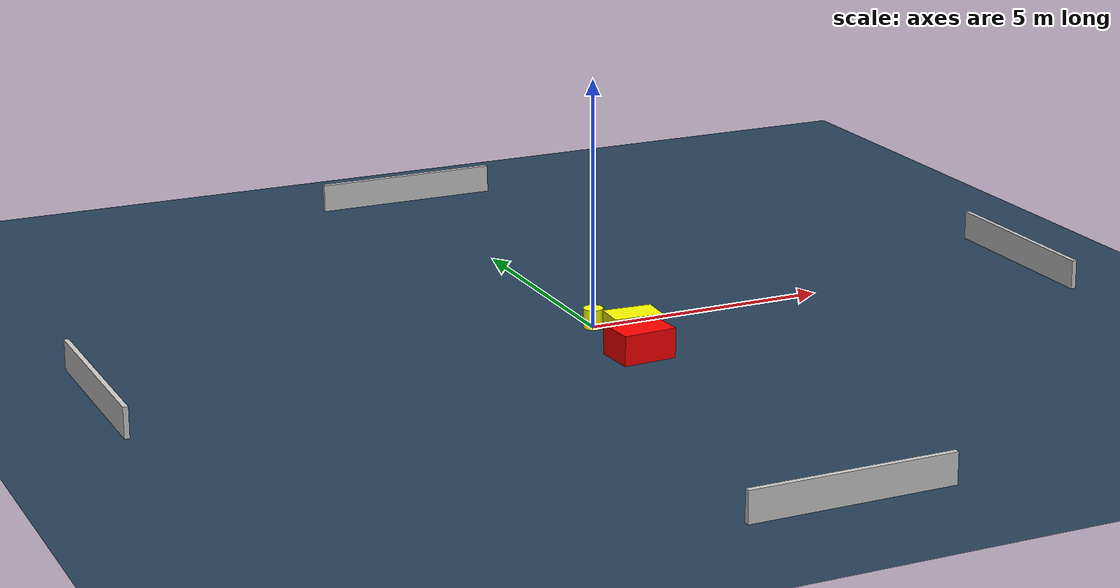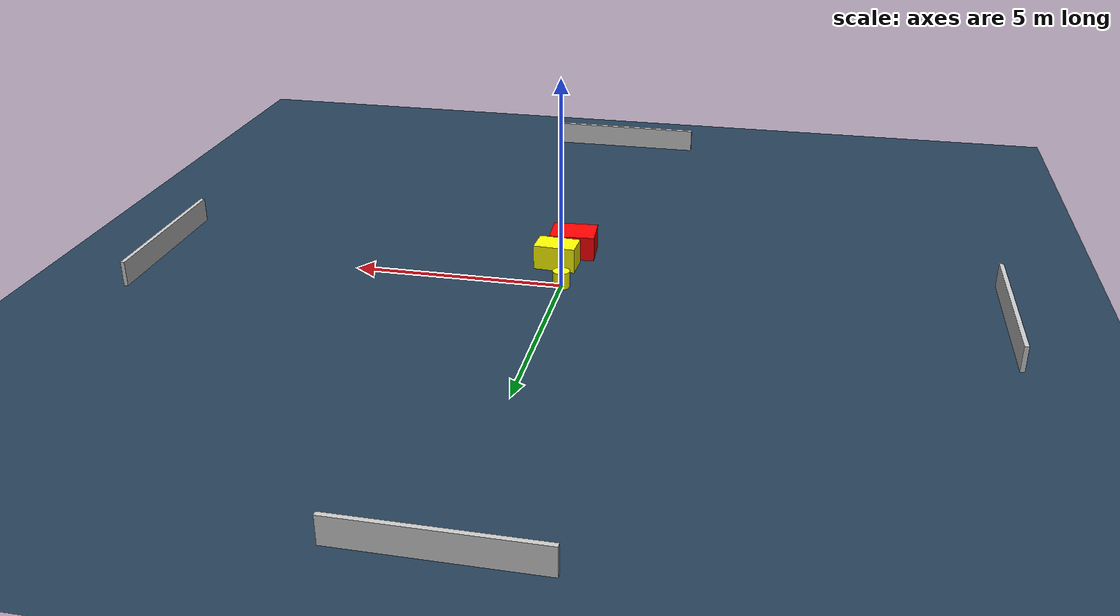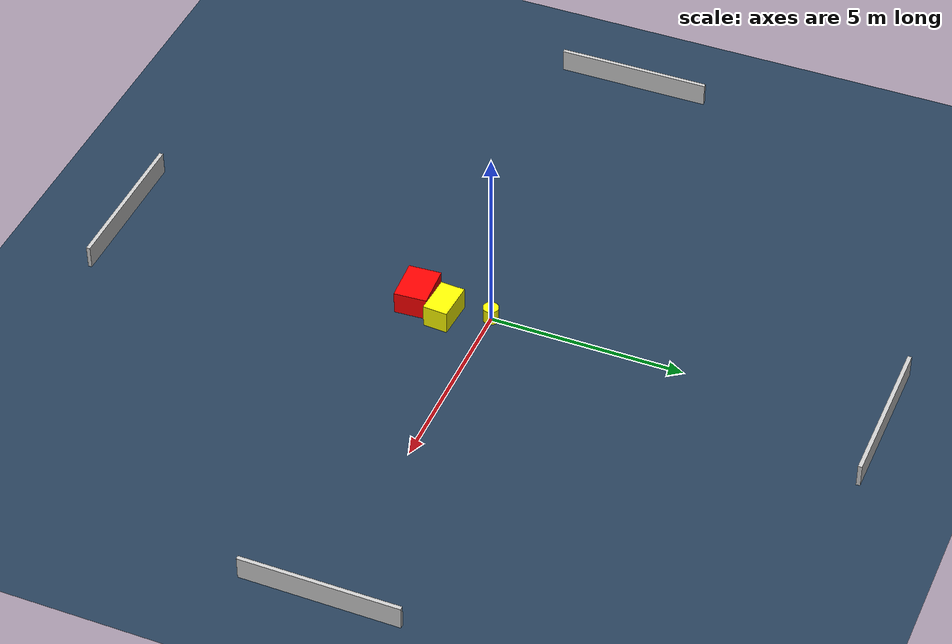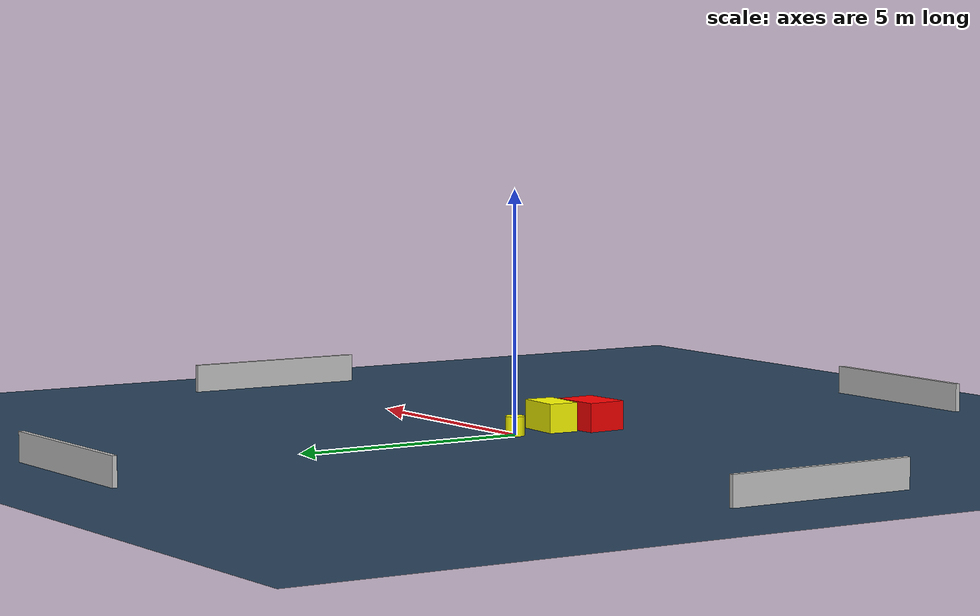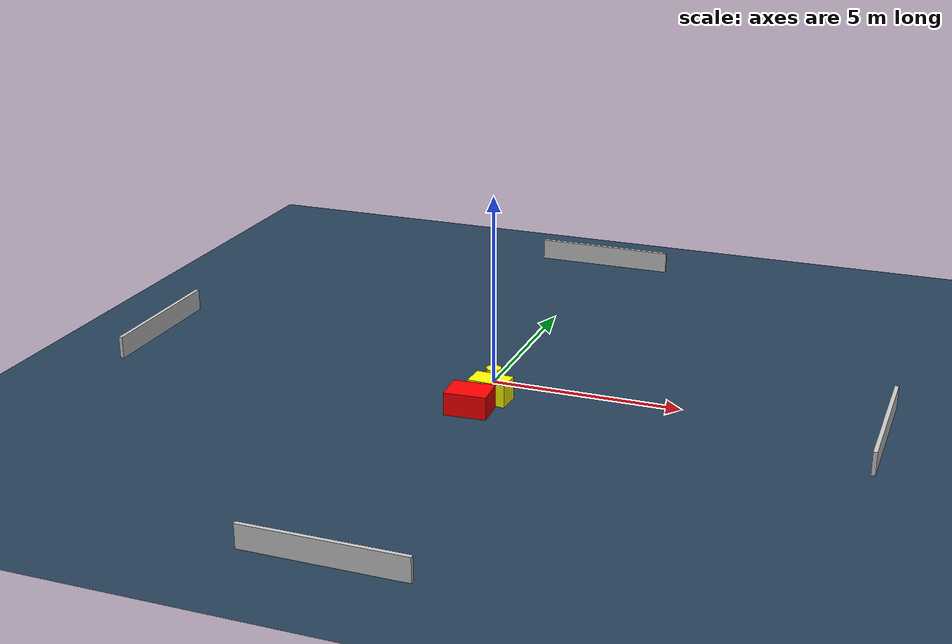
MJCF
<?xml version="1.0" ?>
<mujoco model="generated_environment">
  <option timestep="0.01" integrator="RK4" cone="elliptic"/>
  <default>
    <geom density="1"/>
  </default>
  <asset>
    <texture builtin="gradient" height="3072" name="skybox" rgb1="0.3 0.5 0.7" rgb2="0 0 0" type="skybox" width="512"/>
    <texture builtin="checker" height="300" name="groundplane" rgb1="0.2 0.3 0.4" rgb2="0.1 0.2 0.3" type="2d" width="300"/>
    <material name="groundplane" reflectance="0.2" texrepeat="5 5" texture="groundplane"/>
  </asset>
  <worldbody>
    <light dir="0 0 -1" directional="true" pos="0 0 1.5"/>
    <geom condim="3" friction="0.5 0.005 0.001" material="groundplane" name="floor" pos="0 0 0" size="0 0 0.05" type="plane"/>
    <body name="walls">
      <geom name="wall_1" condim="4" pos="-10.0 0.0 0.3" rgba="0.800000011920929 0.800000011920929 0.800000011920929 1.0" size="0.05 2.0 0.3" type="box"/>
      <geom name="wall_2" condim="4" pos="10.0 0.0 0.3" rgba="0.800000011920929 0.800000011920929 0.800000011920929 1.0" size="0.05 2.0 0.3" type="box"/>
      <geom name="wall_3" condim="4" pos="0.0 -10.0 0.3" rgba="0.800000011920929 0.800000011920929 0.800000011920929 1.0" size="2.0 0.05 0.3" type="box"/>
      <geom name="wall_4" condim="4" pos="0.0 10.0 0.3" rgba="0.800000011920929 0.800000011920929 0.800000011920929 1.0" size="2.0 0.05 0.3" type="box"/>
    </body>
    <body name="robot">
      <joint name="joint_x" type="slide" pos="0 0 0" axis="1 0 0"/>
      <joint name="joint_y" type="slide" pos="0 0 0" axis="0 1 0"/>
      <geom name="robot" type="cylinder" pos="0.0 0.0 0.2" size="0.2 0.2 0.0" mass="5.0" friction="1.0 0.005 0.0001" condim="4" rgba="1.0 1.0 0.0 1.0"/>
    </body>
    <body name="obstacle_1_movable">
      <geom name="obstacle_1_movable" condim="4" pos="0.32762049269874577 -1.1043069302535164 0.3" euler="0 0 176.6960183163932" friction="0.0 0.005 0.001" rgba="1.0 1.0 0.0 1.0" size="0.5018924869728727 0.3161393328124743 0.3" type="box" mass="0.1"/>
      <joint type="free"/>
    </body>
    <body name="obstacle_2_static">
      <geom name="obstacle_2_static" condim="4" pos="0.07179973054756948 -1.91289064971996 0.3" euler="0 0 93.45246064296732" friction="0.0 0.005 0.001" rgba="1.0 0.0 0.0 1.0" size="0.4218087039989248 0.548658681250618 0.3" type="box"/>
    </body>
  </worldbody>
  <actuator>
    <motor name="actuator_x" joint="joint_x" gear="1" ctrlrange="-1 1"/>
    <motor name="actuator_y" joint="joint_y" gear="1" ctrlrange="-1 1"/>
  </actuator>
</mujoco>
